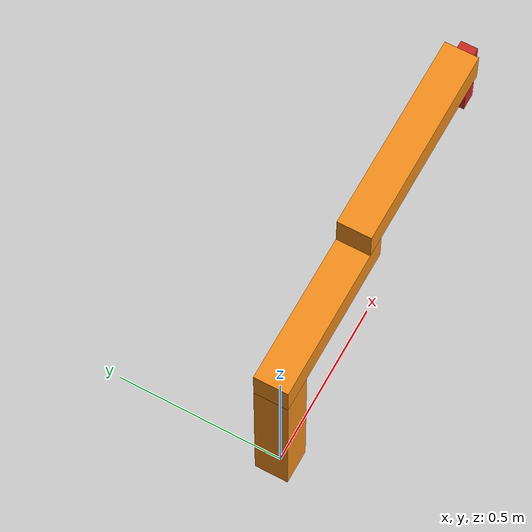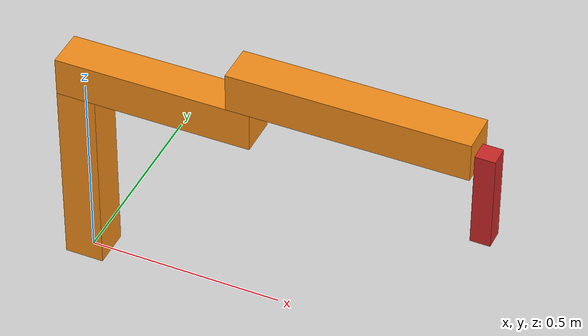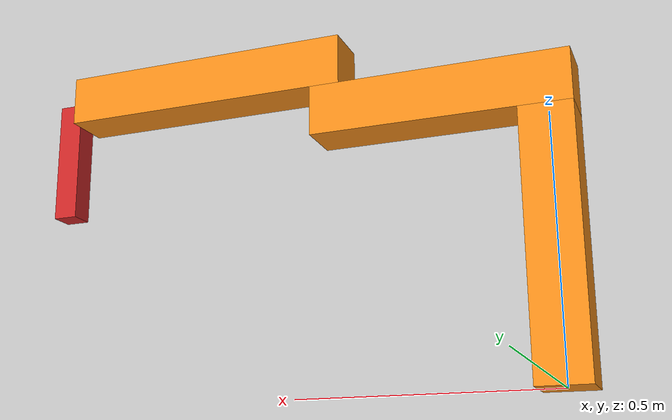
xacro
<?xml version="1.0"?>
<!-- Revolute-Revolute Manipulator -->
<robot name="vbmbot" xmlns:xacro="http://www.ros.org/wiki/xacro">

  <!-- Constants for robot dimensions -->
  <xacro:property name="PI" value="3.1415926535897931"/>
  <xacro:property name="mass" value="1" /> <!-- arbitrary value for mass -->
  <xacro:property name="width" value="0.1" /> <!-- Square dimensions (widthxwidth) of beams -->

  <xacro:property name="height1" value="0.5" /> <!-- Link 1 -->
  <xacro:property name="height2" value="0.5" /> <!-- Link 2 -->
  <xacro:property name="height3" value="0.5" /> <!-- Link 3 -->
  <xacro:property name="height4" value="0.25" /> <!-- Link 4 -->
  <xacro:property name="width2" value="0.05" /> <!-- Size of square SCARA hand -->
  <xacro:property name="axel_offset" value="0.05" /> <!-- Space btw top of beam and the each joint -->

  <!-- Import all Gazebo-customization elements, including Gazebo colors -->
  <xacro:include filename="$(find vision_based_manipulation)/urdf/vbmbot.gazebo" />
  <!-- Import Rviz colors -->
  <xacro:include filename="$(find vision_based_manipulation)/urdf/materials.xacro" />

   <!-- Used for fixing the flatboard to Gazebo 'base_link' -->

  <gazebo reference="box">
    <material>Gazebo/Orange</material>
  </gazebo>

  <!-- Used for fixing robot to Gazebo 'base_link' -->
  <link name="world"/>

  <joint name="joint0" type="continuous">
    <parent link="world"/>
    <child link="link1"/>
    <axis xyz="0 0 1"/>
    <dynamics damping="0.7"/>
  </joint>

  <!-- Base Link -->
  <link name="link1">
    <collision>
      <origin xyz="0 0 ${height1/2}" rpy="0 0 0"/>
      <geometry>
	<box size="${width} ${width} ${height1}"/>
      </geometry>
    </collision>

    <visual>
      <origin xyz="0 0 ${height1/2}" rpy="0 0 0"/>
      <geometry>
	<box size="${width} ${width} ${height1}"/>
      </geometry>
      <material name="orange"/>
    </visual>

    <inertial>
      <origin xyz="0 0 ${height1/2}" rpy="0 0 0"/>
      <mass value="${mass}"/>
      <inertia
	  ixx="${mass / 12.0 * (width*width + height1*height1)}" ixy="0.0" ixz="0.0"
	  iyy="${mass / 12.0 * (height1*height1 + width*width)}" iyz="0.0"
	  izz="${mass / 12.0 * (width*width + width*width)}"/>
    </inertial>
  </link>

  <joint name="joint1" type="fixed">
    <parent link="link1"/>
    <child link="link2"/>
    <origin xyz="0 0 ${height1 + axel_offset}" rpy="0 1.5708 0"/>
  </joint>

  <!-- Middle Link -->
  <link name="link2">
    <collision>
      <origin xyz="0 0 ${height2/2 - axel_offset}" rpy="0 0 0"/>
      <geometry>
	<box size="${width} ${width} ${height2}"/>
      </geometry>
    </collision>

    <visual>
      <origin xyz="0 0 ${height2/2 - axel_offset}" rpy="0 0 0"/>
      <geometry>
	<box size="${width} ${width} ${height2}"/>
      </geometry>
      <material name="orange"/>
    </visual>

    <inertial>
      <origin xyz="0 0 ${height2/2 - axel_offset}" rpy="0 0 0"/>
      <mass value="${mass}"/>
      <inertia
	  ixx="${mass / 12.0 * (width*width + height2*height2)}" ixy="0.0" ixz="0.0"
	  iyy="${mass / 12.0 * (height2*height2 + width*width)}" iyz="0.0"
	  izz="${mass / 12.0 * (width*width + width*width)}"/>
    </inertial>
  </link>

  <joint name="joint2" type="continuous">
    <parent link="link2"/>
    <child link="link3"/>
    <origin xyz="-${width} 0 ${height2 - 0.01}" rpy="0 0 0"/>
    <axis xyz="1 0 0"/>
    <dynamics damping="0.7"/>
  </joint>

  <link name="link3">
    <collision>
      <origin xyz="0 0 ${height3/2 - axel_offset}" rpy="0 0 0"/>
      <geometry>
	<box size="${width} ${width} ${height3}"/>
      </geometry>
    </collision>

    <visual>
      <origin xyz="0 0 ${height3/2 - axel_offset}" rpy="0 0 0"/>
      <geometry>
	<box size="${width} ${width} 0.6"/>
      </geometry>
      <material name="orange"/>
    </visual>

    <inertial>
      <origin xyz="0 0 ${height3/2 - axel_offset}" rpy="0 0 0"/>
      <mass value="${mass}"/>
      <inertia
	  ixx="${mass / 12.0 * (width*width + height3*height3)}" ixy="0.0" ixz="0.0"
	  iyy="${mass / 12.0 * (height3*height3 + width*width)}" iyz="0.0"
	  izz="${mass / 12.0 * (width*width + width*width)}"/>
    </inertial>
  </link>

  <joint name="joint3" type="prismatic">
    <axis xyz="1 0 0" />
    <origin xyz="0 0 ${height3+(width2/2)}" rpy="0 0 0 "/>
    <parent link="link3"/>
    <child link="link4"/>
    <limit effort="1000.0" lower="-0.25" upper="0" velocity="0.05"/>
  </joint>

  <link name="link4">
    <collision>
      <origin xyz="${height4/2} 0 0" rpy="0 0 0"/>
      <geometry>
	<box size="${height4} ${width2} ${width2}"/>
      </geometry>
    </collision>

    <visual>
      <origin xyz="${height4/2} 0 0" rpy="0 0 0"/>
      <geometry>
	<box size="${height4} ${width2} ${width2}"/>
      </geometry>
      <material name="red"/>
    </visual>

    <inertial>
      <mass value="1e-5" />
      <origin xyz="${height4/2} 0 0" rpy="0 0 0"/>
      <inertia ixx="1e-6" ixy="0" ixz="0" iyy="1e-6" iyz="0" izz="1e-6" />
    </inertial>
  </link>

  <transmission name="tran1">
    <type>transmission_interface/SimpleTransmission</type>
    <joint name="joint0">
      <hardwareInterface>hardware_interface/VelocityJointInterface</hardwareInterface>
    </joint>
    <actuator name="motor1">
      <hardwareInterface>hardware_interface/VelocityJointInterface</hardwareInterface>
      <mechanicalReduction>1</mechanicalReduction>
    </actuator>
  </transmission>

  <transmission name="tran2">
    <type>transmission_interface/SimpleTransmission</type>
    <joint name="joint2">
      <hardwareInterface>hardware_interface/VelocityJointInterface</hardwareInterface>
    </joint>
    <actuator name="motor2">
      <hardwareInterface>hardware_interface/VelocityJointInterface</hardwareInterface>
      <mechanicalReduction>1</mechanicalReduction>
    </actuator>
  </transmission>

  <transmission name="tran3">
    <type>transmission_interface/SimpleTransmission</type>
    <joint name="joint3">
      <hardwareInterface>hardware_interface/VelocityJointInterface</hardwareInterface>
    </joint>
    <actuator name="motor3">
      <hardwareInterface>hardware_interface/VelocityJointInterface</hardwareInterface>
      <mechanicalReduction>1</mechanicalReduction>
    </actuator>
  </transmission>

</robot>
